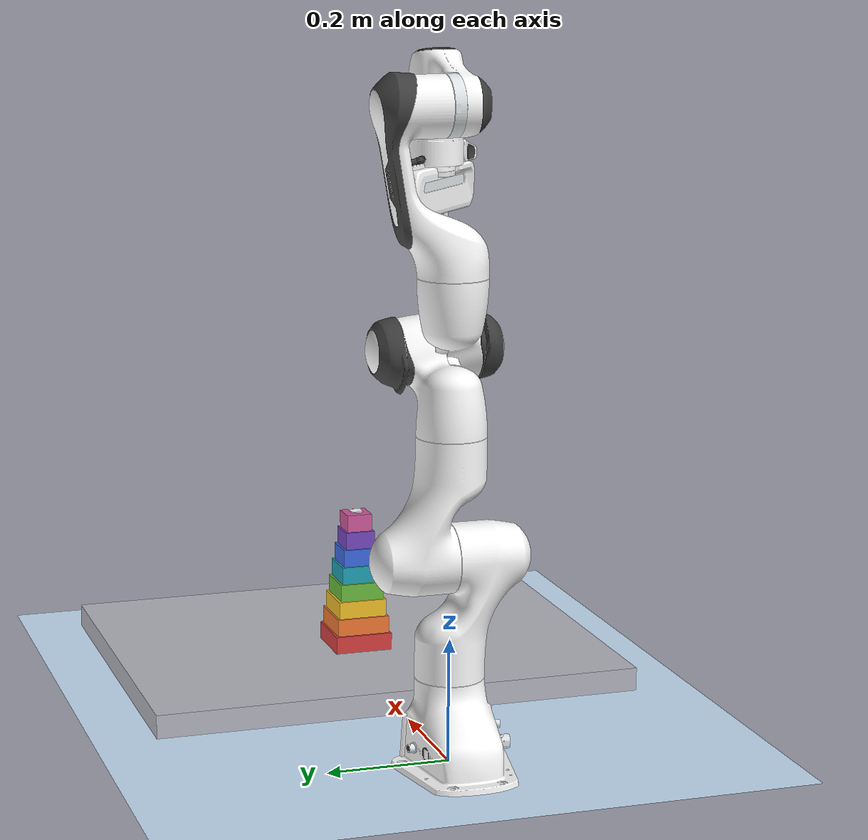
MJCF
<?xml version='1.0' encoding='utf-8'?>
<mujoco model="panda">
  <compiler angle="radian" meshdir="assets" autolimits="true" />

  <option integrator="implicit" />
  <option gravity="0 0 -9.81" />

  <default>
    <default class="panda">
      <material specular="0.5" shininess="0.25" />
      <joint armature="0.1" damping="1" axis="0 0 1" range="-2.8973 2.8973" />
      <general dyntype="none" biastype="none" ctrlrange="-87 87" forcerange="-87 87" />
      <default class="finger">
        <joint axis="0 1 0" type="slide" range="0 0.04" />
      </default>

      <default class="visual">
        <geom type="mesh" contype="0" conaffinity="0" group="2" />
      </default>
      <default class="collision">
        <geom type="mesh" group="3" />
        <default class="fingertip_pad_collision_1">
          <geom type="box" size="0.0085 0.004 0.0085" pos="0 0.0055 0.0445" />
        </default>
        <default class="fingertip_pad_collision_2">
          <geom type="box" size="0.003 0.002 0.003" pos="0.0055 0.002 0.05" />
        </default>
        <default class="fingertip_pad_collision_3">
          <geom type="box" size="0.003 0.002 0.003" pos="-0.0055 0.002 0.05" />
        </default>
        <default class="fingertip_pad_collision_4">
          <geom type="box" size="0.003 0.002 0.0035" pos="0.0055 0.002 0.0395" />
        </default>
        <default class="fingertip_pad_collision_5">
          <geom type="box" size="0.003 0.002 0.0035" pos="-0.0055 0.002 0.0395" />
        </default>
      </default>
    </default>
  </default>

  <asset>
    <material class="panda" name="white" rgba="1 1 1 1" />
    <material class="panda" name="off_white" rgba="0.901961 0.921569 0.929412 1" />
    <material class="panda" name="black" rgba="0.25 0.25 0.25 1" />
    <material class="panda" name="green" rgba="0 1 0 1" />
    <material class="panda" name="light_blue" rgba="0.039216 0.541176 0.780392 1" />

    <mesh name="link0_c" file="link0.stl" />
    <mesh name="link1_c" file="link1.stl" />
    <mesh name="link2_c" file="link2.stl" />
    <mesh name="link3_c" file="link3.stl" />
    <mesh name="link4_c" file="link4.stl" />
    <mesh name="link5_c0" file="link5_collision_0.obj" />
    <mesh name="link5_c1" file="link5_collision_1.obj" />
    <mesh name="link5_c2" file="link5_collision_2.obj" />
    <mesh name="link6_c" file="link6.stl" />
    <mesh name="link7_c" file="link7.stl" />
    <mesh name="hand_c" file="hand.stl" />

    <mesh file="link0_0.obj" />
    <mesh file="link0_1.obj" />
    <mesh file="link0_2.obj" />
    <mesh file="link0_3.obj" />
    <mesh file="link0_4.obj" />
    <mesh file="link0_5.obj" />
    <mesh file="link0_7.obj" />
    <mesh file="link0_8.obj" />
    <mesh file="link0_9.obj" />
    <mesh file="link0_10.obj" />
    <mesh file="link0_11.obj" />
    <mesh file="link1.obj" />
    <mesh file="link2.obj" />
    <mesh file="link3_0.obj" />
    <mesh file="link3_1.obj" />
    <mesh file="link3_2.obj" />
    <mesh file="link3_3.obj" />
    <mesh file="link4_0.obj" />
    <mesh file="link4_1.obj" />
    <mesh file="link4_2.obj" />
    <mesh file="link4_3.obj" />
    <mesh file="link5_0.obj" />
    <mesh file="link5_1.obj" />
    <mesh file="link5_2.obj" />
    <mesh file="link6_0.obj" />
    <mesh file="link6_1.obj" />
    <mesh file="link6_2.obj" />
    <mesh file="link6_3.obj" />
    <mesh file="link6_4.obj" />
    <mesh file="link6_5.obj" />
    <mesh file="link6_6.obj" />
    <mesh file="link6_7.obj" />
    <mesh file="link6_8.obj" />
    <mesh file="link6_9.obj" />
    <mesh file="link6_10.obj" />
    <mesh file="link6_11.obj" />
    <mesh file="link6_12.obj" />
    <mesh file="link6_13.obj" />
    <mesh file="link6_14.obj" />
    <mesh file="link6_15.obj" />
    <mesh file="link6_16.obj" />
    <mesh file="link7_0.obj" />
    <mesh file="link7_1.obj" />
    <mesh file="link7_2.obj" />
    <mesh file="link7_3.obj" />
    <mesh file="link7_4.obj" />
    <mesh file="link7_5.obj" />
    <mesh file="link7_6.obj" />
    <mesh file="link7_7.obj" />
    <mesh file="hand_0.obj" />
    <mesh file="hand_1.obj" />
    <mesh file="hand_2.obj" />
    <mesh file="hand_3.obj" />
    <mesh file="hand_4.obj" />
    <mesh file="finger_0.obj" />
    <mesh file="finger_1.obj" />
  <material name="label_A_mat" rgba="0.1 0.1 0.1 1" emission="0.15" /><material name="label_B_mat" rgba="0.1 0.1 0.1 1" emission="0.15" /><material name="label_C_mat" rgba="0.1 0.1 0.1 1" emission="0.15" /><material name="label_D_mat" rgba="0.1 0.1 0.1 1" emission="0.15" /><material name="label_E_mat" rgba="0.1 0.1 0.1 1" emission="0.15" /><material name="label_F_mat" rgba="0.1 0.1 0.1 1" emission="0.15" /><material name="label_G_mat" rgba="0.1 0.1 0.1 1" emission="0.15" /><material name="label_H_mat" rgba="0.1 0.1 0.1 1" emission="0.15" /></asset>

  <worldbody>
    <light name="top" pos="0 0 2" mode="trackcom" />
    <body name="link0" childclass="panda">
      <inertial mass="0.629769" pos="-0.041018 -0.00014 0.049974" fullinertia="0.00315 0.00388 0.004285 8.2904e-7 0.00015 8.2299e-6" />
      <geom mesh="link0_0" material="off_white" class="visual" />
      <geom mesh="link0_1" material="black" class="visual" />
      <geom mesh="link0_2" material="off_white" class="visual" />
      <geom mesh="link0_3" material="black" class="visual" />
      <geom mesh="link0_4" material="off_white" class="visual" />
      <geom mesh="link0_5" material="black" class="visual" />
      <geom mesh="link0_7" material="white" class="visual" />
      <geom mesh="link0_8" material="white" class="visual" />
      <geom mesh="link0_9" material="black" class="visual" />
      <geom mesh="link0_10" material="off_white" class="visual" />
      <geom mesh="link0_11" material="white" class="visual" />
      <geom mesh="link0_c" class="collision" />
      <body name="link1" pos="0 0 0.333">
        <inertial mass="4.970684" pos="0.003875 0.002081 -0.04762" fullinertia="0.70337 0.70661 0.0091170 -0.00013900 0.0067720 0.019169" />
        <joint name="joint1" />
        <geom material="white" mesh="link1" class="visual" />
        <geom mesh="link1_c" class="collision" />
        <body name="link2" quat="1 -1 0 0">
          <inertial mass="0.646926" pos="-0.003141 -0.02872 0.003495" fullinertia="0.0079620 2.8110e-2 2.5995e-2 -3.925e-3 1.0254e-2 7.04e-4" />
          <joint name="joint2" range="-1.7628 1.7628" />
          <geom material="white" mesh="link2" class="visual" />
          <geom mesh="link2_c" class="collision" />
          <body name="link3" pos="0 -0.316 0" quat="1 1 0 0">
            <joint name="joint3" />
            <inertial mass="3.228604" pos="2.7518e-2 3.9252e-2 -6.6502e-2" fullinertia="3.7242e-2 3.6155e-2 1.083e-2 -4.761e-3 -1.1396e-2 -1.2805e-2" />
            <geom mesh="link3_0" material="white" class="visual" />
            <geom mesh="link3_1" material="white" class="visual" />
            <geom mesh="link3_2" material="white" class="visual" />
            <geom mesh="link3_3" material="black" class="visual" />
            <geom mesh="link3_c" class="collision" />
            <body name="link4" pos="0.0825 0 0" quat="1 1 0 0">
              <inertial mass="3.587895" pos="-5.317e-2 1.04419e-1 2.7454e-2" fullinertia="2.5853e-2 1.9552e-2 2.8323e-2 7.796e-3 -1.332e-3 8.641e-3" />
              <joint name="joint4" range="-3.0718 -0.0698" />
              <geom mesh="link4_0" material="white" class="visual" />
              <geom mesh="link4_1" material="white" class="visual" />
              <geom mesh="link4_2" material="black" class="visual" />
              <geom mesh="link4_3" material="white" class="visual" />
              <geom mesh="link4_c" class="collision" />
              <body name="link5" pos="-0.0825 0.384 0" quat="1 -1 0 0">
                <inertial mass="1.225946" pos="-1.1953e-2 4.1065e-2 -3.8437e-2" fullinertia="3.5549e-2 2.9474e-2 8.627e-3 -2.117e-3 -4.037e-3 2.29e-4" />
                <joint name="joint5" />
                <geom mesh="link5_0" material="black" class="visual" />
                <geom mesh="link5_1" material="white" class="visual" />
                <geom mesh="link5_2" material="white" class="visual" />
                <geom mesh="link5_c0" class="collision" />
                <geom mesh="link5_c1" class="collision" />
                <geom mesh="link5_c2" class="collision" />
                <body name="link6" quat="1 1 0 0">
                  <inertial mass="1.666555" pos="6.0149e-2 -1.4117e-2 -1.0517e-2" fullinertia="1.964e-3 4.354e-3 5.433e-3 1.09e-4 -1.158e-3 3.41e-4" />
                  <joint name="joint6" range="-0.0175 3.7525" />
                  <geom mesh="link6_0" material="off_white" class="visual" />
                  <geom mesh="link6_1" material="white" class="visual" />
                  <geom mesh="link6_2" material="black" class="visual" />
                  <geom mesh="link6_3" material="white" class="visual" />
                  <geom mesh="link6_4" material="white" class="visual" />
                  <geom mesh="link6_5" material="white" class="visual" />
                  <geom mesh="link6_6" material="white" class="visual" />
                  <geom mesh="link6_7" material="light_blue" class="visual" />
                  <geom mesh="link6_8" material="light_blue" class="visual" />
                  <geom mesh="link6_9" material="black" class="visual" />
                  <geom mesh="link6_10" material="black" class="visual" />
                  <geom mesh="link6_11" material="white" class="visual" />
                  <geom mesh="link6_12" material="green" class="visual" />
                  <geom mesh="link6_13" material="white" class="visual" />
                  <geom mesh="link6_14" material="black" class="visual" />
                  <geom mesh="link6_15" material="black" class="visual" />
                  <geom mesh="link6_16" material="white" class="visual" />
                  <geom mesh="link6_c" class="collision" />
                  <body name="link7" pos="0.088 0 0" quat="1 1 0 0">
                    <inertial mass="7.35522e-01" pos="1.0517e-2 -4.252e-3 6.1597e-2" fullinertia="1.2516e-2 1.0027e-2 4.815e-3 -4.28e-4 -1.196e-3 -7.41e-4" />
                    <joint name="joint7" />
                    <geom mesh="link7_0" material="white" class="visual" />
                    <geom mesh="link7_1" material="black" class="visual" />
                    <geom mesh="link7_2" material="black" class="visual" />
                    <geom mesh="link7_3" material="black" class="visual" />
                    <geom mesh="link7_4" material="black" class="visual" />
                    <geom mesh="link7_5" material="black" class="visual" />
                    <geom mesh="link7_6" material="black" class="visual" />
                    <geom mesh="link7_7" material="white" class="visual" />
                    <geom mesh="link7_c" class="collision" />
                    <body name="hand" pos="0 0 0.107" quat="0.9238795 0 0 -0.3826834">
                      <site name="grip_site" pos="0 0 0.1034" size="0.008" rgba="1 0 0 1" />
                      <inertial mass="0.73" pos="-0.01 0 0.03" diaginertia="0.001 0.0025 0.0017" />
                      <geom mesh="hand_0" material="off_white" class="visual" />
                      <geom mesh="hand_1" material="black" class="visual" />
                      <geom mesh="hand_2" material="black" class="visual" />
                      <geom mesh="hand_3" material="white" class="visual" />
                      <geom mesh="hand_4" material="off_white" class="visual" />
                      <geom mesh="hand_c" class="collision" />
                      <body name="left_finger" pos="0 0 0.0584">
                        <inertial mass="0.015" pos="0 0 0" diaginertia="2.375e-6 2.375e-6 7.5e-7" />
                        <joint name="finger_joint1" class="finger" />
                        <geom mesh="finger_0" material="off_white" class="visual" />
                        <geom mesh="finger_1" material="black" class="visual" />
                        <geom mesh="finger_0" class="collision" />
                        <geom class="fingertip_pad_collision_1" />
                        <geom class="fingertip_pad_collision_2" />
                        <geom class="fingertip_pad_collision_3" />
                        <geom class="fingertip_pad_collision_4" />
                        <geom class="fingertip_pad_collision_5" />
                      </body>
                      <body name="right_finger" pos="0 0 0.0584" quat="0 0 0 1">
                        <inertial mass="0.015" pos="0 0 0" diaginertia="2.375e-6 2.375e-6 7.5e-7" />
                        <joint name="finger_joint2" class="finger" />
                        <geom mesh="finger_0" material="off_white" class="visual" />
                        <geom mesh="finger_1" material="black" class="visual" />
                        <geom mesh="finger_0" class="collision" />
                        <geom class="fingertip_pad_collision_1" />
                        <geom class="fingertip_pad_collision_2" />
                        <geom class="fingertip_pad_collision_3" />
                        <geom class="fingertip_pad_collision_4" />
                        <geom class="fingertip_pad_collision_5" />
                      </body>
                    </body>
                  </body>
                </body>
              </body>
            </body>
          </body>
        </body>
      </body>
    </body>
    <geom name="ground" type="plane" size="3 3 0.1" rgba="0.8 0.9 1 1" />

  <body name="hanoi_table" pos="0.550000 0.000000 0.020000"><geom name="hanoi_table_geom" type="box" size="0.320000 0.420000 0.020000" rgba="0.720000 0.720000 0.760000 1.000000" friction="0.9 0.2 0.1" /><site name="hanoi_table_site" pos="0 0 0" size="0.004" rgba="0.720000 0.720000 0.760000 1.000000" /></body><body name="block_A" pos="0.500000 0.000000 0.055000"><geom name="block_A_geom" type="box" size="0.050000 0.050000 0.015000" rgba="0.850000 0.250000 0.250000 1.000000" friction="0.9 0.2 0.1" density="500.000000" /><freejoint name="block_A_freejoint" /><site name="block_A_site" pos="0 0 0" size="0.004" rgba="0.850000 0.250000 0.250000 1.000000" /><geom name="block_A_label" type="box" pos="0.000000 0.000000 0.017000" size="0.010 0.010 0.001" rgba="1 1 1 0.9" contype="0" conaffinity="0" /></body><body name="block_B" pos="0.500000 0.000000 0.085000"><geom name="block_B_geom" type="box" size="0.046000 0.046000 0.015000" rgba="0.950000 0.480000 0.200000 1.000000" friction="0.9 0.2 0.1" density="500.000000" /><freejoint name="block_B_freejoint" /><site name="block_B_site" pos="0 0 0" size="0.004" rgba="0.950000 0.480000 0.200000 1.000000" /><geom name="block_B_label" type="box" pos="0.000000 0.000000 0.017000" size="0.010 0.010 0.001" rgba="1 1 1 0.9" contype="0" conaffinity="0" /></body><body name="block_C" pos="0.500000 0.000000 0.115000"><geom name="block_C_geom" type="box" size="0.042000 0.042000 0.015000" rgba="0.960000 0.760000 0.160000 1.000000" friction="0.9 0.2 0.1" density="500.000000" /><freejoint name="block_C_freejoint" /><site name="block_C_site" pos="0 0 0" size="0.004" rgba="0.960000 0.760000 0.160000 1.000000" /><geom name="block_C_label" type="box" pos="0.000000 0.000000 0.017000" size="0.010 0.010 0.001" rgba="1 1 1 0.9" contype="0" conaffinity="0" /></body><body name="block_D" pos="0.500000 0.000000 0.145000"><geom name="block_D_geom" type="box" size="0.038000 0.038000 0.015000" rgba="0.420000 0.740000 0.240000 1.000000" friction="0.9 0.2 0.1" density="500.000000" /><freejoint name="block_D_freejoint" /><site name="block_D_site" pos="0 0 0" size="0.004" rgba="0.420000 0.740000 0.240000 1.000000" /><geom name="block_D_label" type="box" pos="0.000000 0.000000 0.017000" size="0.010 0.010 0.001" rgba="1 1 1 0.9" contype="0" conaffinity="0" /></body><body name="block_E" pos="0.500000 0.000000 0.175000"><geom name="block_E_geom" type="box" size="0.034000 0.034000 0.015000" rgba="0.120000 0.640000 0.720000 1.000000" friction="0.9 0.2 0.1" density="500.000000" /><freejoint name="block_E_freejoint" /><site name="block_E_site" pos="0 0 0" size="0.004" rgba="0.120000 0.640000 0.720000 1.000000" /><geom name="block_E_label" type="box" pos="0.000000 0.000000 0.017000" size="0.010 0.010 0.001" rgba="1 1 1 0.9" contype="0" conaffinity="0" /></body><body name="block_F" pos="0.500000 0.000000 0.205000"><geom name="block_F_geom" type="box" size="0.030000 0.030000 0.015000" rgba="0.240000 0.420000 0.900000 1.000000" friction="0.9 0.2 0.1" density="500.000000" /><freejoint name="block_F_freejoint" /><site name="block_F_site" pos="0 0 0" size="0.004" rgba="0.240000 0.420000 0.900000 1.000000" /><geom name="block_F_label" type="box" pos="0.000000 0.000000 0.017000" size="0.010 0.010 0.001" rgba="1 1 1 0.9" contype="0" conaffinity="0" /></body><body name="block_G" pos="0.500000 0.000000 0.235000"><geom name="block_G_geom" type="box" size="0.026000 0.026000 0.015000" rgba="0.470000 0.280000 0.760000 1.000000" friction="0.9 0.2 0.1" density="500.000000" /><freejoint name="block_G_freejoint" /><site name="block_G_site" pos="0 0 0" size="0.004" rgba="0.470000 0.280000 0.760000 1.000000" /><geom name="block_G_label" type="box" pos="0.000000 0.000000 0.017000" size="0.010 0.010 0.001" rgba="1 1 1 0.9" contype="0" conaffinity="0" /></body><body name="block_H" pos="0.500000 0.000000 0.265000"><geom name="block_H_geom" type="box" size="0.022000 0.022000 0.015000" rgba="0.820000 0.350000 0.620000 1.000000" friction="0.9 0.2 0.1" density="500.000000" /><freejoint name="block_H_freejoint" /><site name="block_H_site" pos="0 0 0" size="0.004" rgba="0.820000 0.350000 0.620000 1.000000" /><geom name="block_H_label" type="box" pos="0.000000 0.000000 0.017000" size="0.010 0.010 0.001" rgba="1 1 1 0.9" contype="0" conaffinity="0" /></body></worldbody>

  <tendon>
    <fixed name="split">
      <joint joint="finger_joint1" coef="0.5" />
      <joint joint="finger_joint2" coef="0.5" />
    </fixed>
  </tendon>

  <equality>
    <joint joint1="finger_joint1" joint2="finger_joint2" solimp="0.95 0.99 0.001" solref="0.005 1" />
  </equality>

  <actuator>
    <general class="panda" name="actuator1" joint="joint1" gainprm="1" />
    <general class="panda" name="actuator2" joint="joint2" gainprm="1" />
    <general class="panda" name="actuator3" joint="joint3" gainprm="1" />
    <general class="panda" name="actuator4" joint="joint4" gainprm="1" />
    <general class="panda" name="actuator5" joint="joint5" gainprm="1" ctrlrange="-12 12" forcerange="-12 12" />
    <general class="panda" name="actuator6" joint="joint6" gainprm="1" forcerange="-12 12" ctrlrange="-12 12" />
    <general class="panda" name="actuator7" joint="joint7" gainprm="1" ctrlrange="-12 12" forcerange="-12 12" />
    <position name="actuator8" tendon="split" ctrlrange="0.005 0.04" kp="400" />
  </actuator>

</mujoco>
